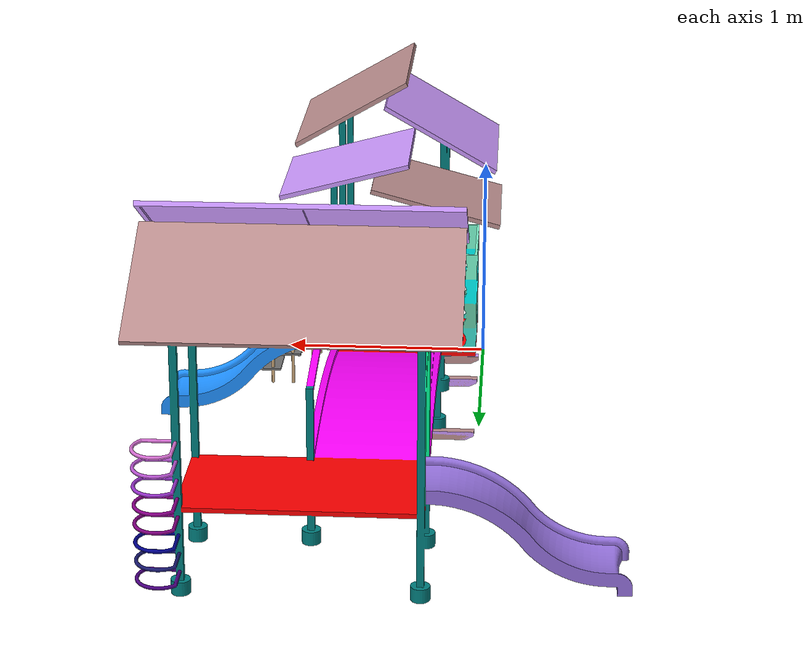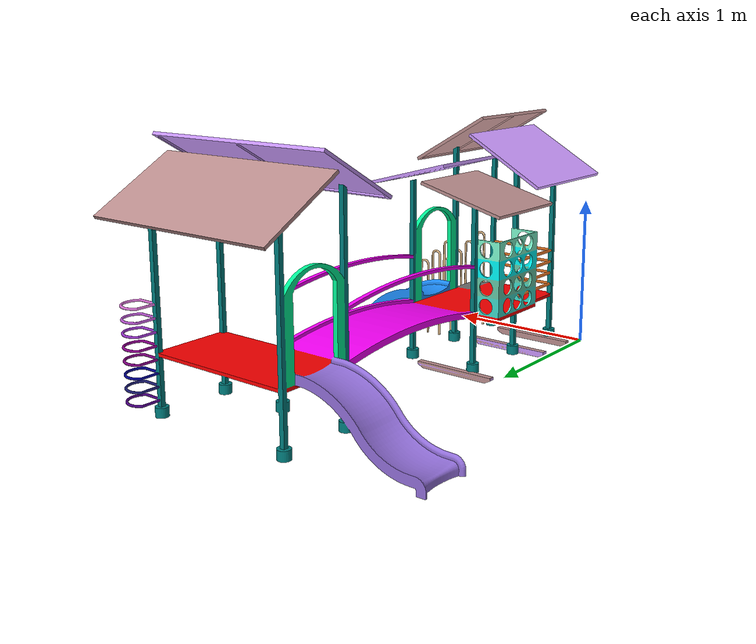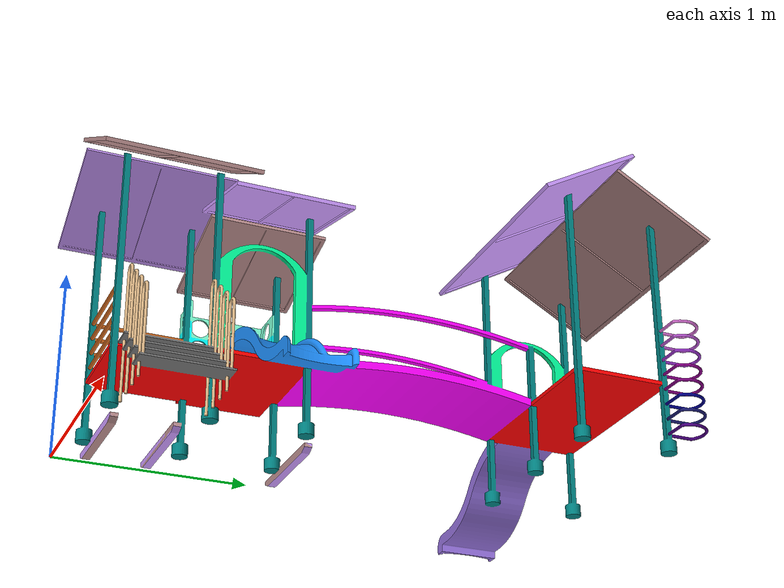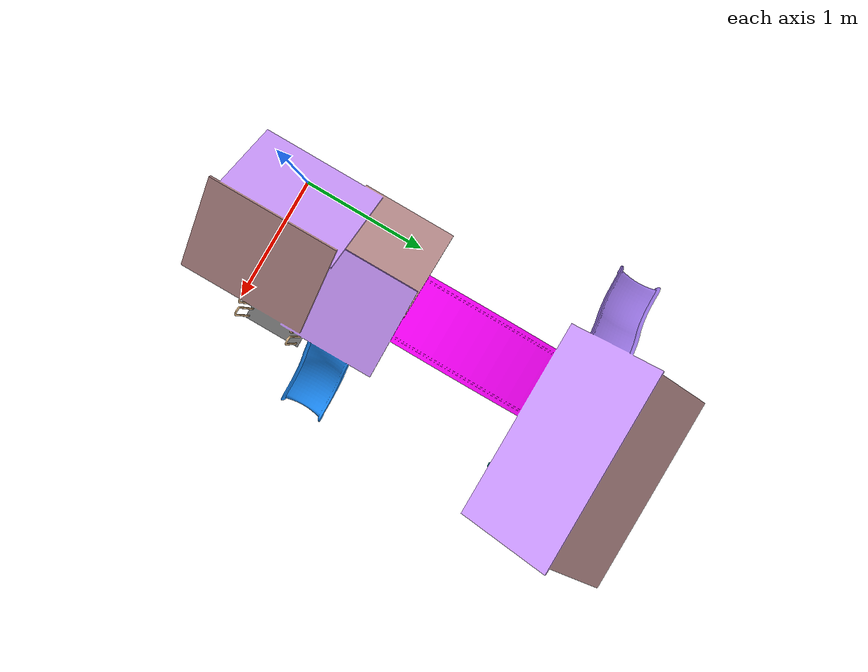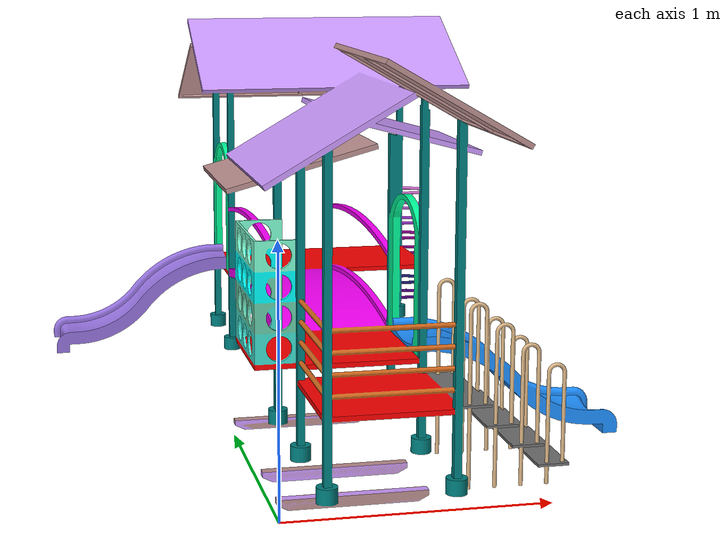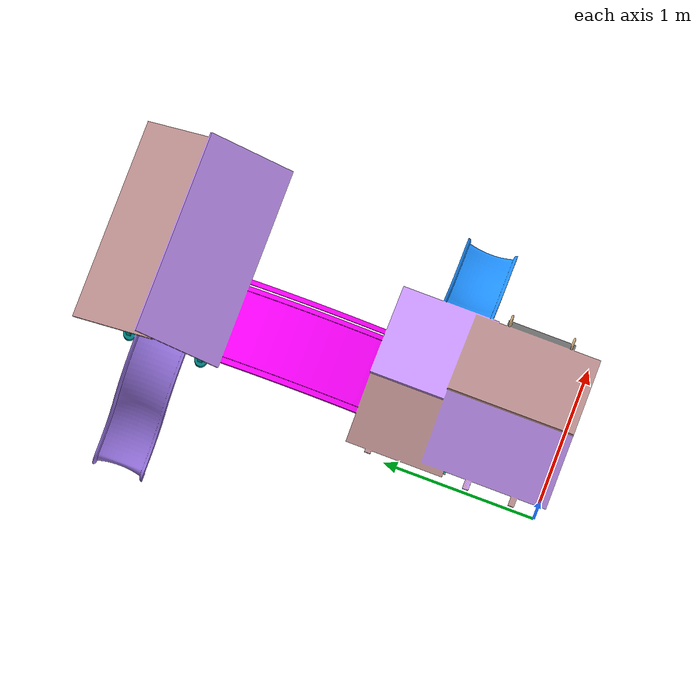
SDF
<?xml version="1.0" ?>
<sdf version="1.5">
  <model name="playground">
    <static>true</static>
    <link name="link">
      <collision name="box">
        <pose>0 0 0.02 0 0 0</pose>
        <geometry>
          <mesh>
            <uri>model://playground/meshes/playground.dae</uri>
            <scale>0.01 0.01 0.01</scale>
          </mesh>
        </geometry>
      </collision>
      <visual name="visual">
        <pose>0 0 0.02 0 0 0</pose>
        <geometry>
          <mesh>
            <uri>model://playground/meshes/playground.dae</uri>
            <scale>0.01 0.01 0.01</scale>
          </mesh>
        </geometry>
      </visual>
    </link>
  </model>
</sdf>
